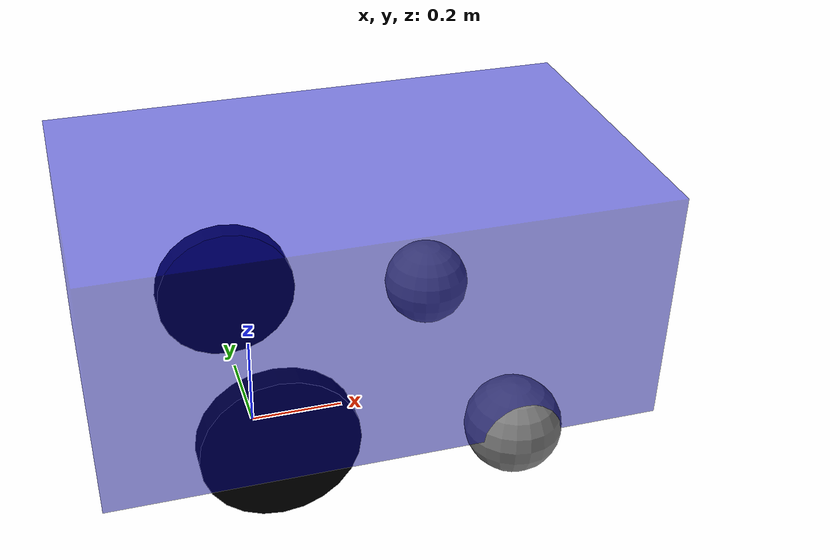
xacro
<?xml version="1.0" encoding="UTF-8"?>
<robot name="wheelchair2" xmlns:xacro="http://www.ros.org/wiki/xacro">

    <xacro:include filename="$(find wheelchair2_description)/urdf/kangaroo_ros2_control.urdf.xacro" />

    <link name="base_footprint" />

    <joint name="base_footprint_joint" type="fixed">
        <parent link="base_footprint" />
        <child link="base_link" />
        <origin xyz="0 0 0.16" rpy="0 0 0" />
    </joint>

    <link name="base_link">
        <visual>
            <origin xyz="0.215 0 0.2" rpy="0 0 0"/>
            <geometry>
                <box size="1.13 0.66 0.5"/>
            </geometry>
            <material name="blue">
                <color rgba="0 0 0.8 0.5"/>
            </material>
        </visual>
    </link>

    <link name="left_wheel">
        <visual>
            <geometry><cylinder radius="0.16" length="0.05"/></geometry>
            <material name="black"><color rgba="0 0 0 1"/></material>
        </visual>
    </link>
    <joint name="base_link_to_left_wheel" type="continuous">
        <parent link="base_link"/>
        <child link="left_wheel"/>
        <origin xyz="0 0.2775 0" rpy="-1.570796 0 0"/>
        <axis xyz="0 0 1"/>
    </joint>

    <link name="right_wheel">
        <visual>
            <geometry><cylinder radius="0.16" length="0.05"/></geometry>
            <material name="black"><color rgba="0 0 0 1"/></material>
        </visual>
    </link>
    <joint name="base_link_to_right_wheel" type="continuous">
        <parent link="base_link"/>
        <child link="right_wheel"/>
        <origin xyz="0 -0.2775 0" rpy="-1.570796 0 0"/>
        <axis xyz="0 0 1"/>
    </joint>

    <link name="caster_left">
        <visual>
            <geometry><sphere radius="0.1"/></geometry>
            <material name="grey"><color rgba="0.5 0.5 0.5 1"/></material>
        </visual>
    </link>
    <joint name="caster_left_joint" type="fixed">
        <parent link="base_link"/>
        <child link="caster_left"/>
        <origin xyz="0.49 0.2775 -0.06" rpy="0 0 0"/>
    </joint>

    <link name="caster_right">
        <visual>
            <geometry><sphere radius="0.1"/></geometry>
            <material name="grey"><color rgba="0.5 0.5 0.5 1"/></material>
        </visual>
    </link>
    <joint name="caster_right_joint" type="fixed">
        <parent link="base_link"/>
        <child link="caster_right"/>
        <origin xyz="0.49 -0.2775 -0.06" rpy="0 0 0"/>
    </joint>

    <link name="laser"/>
    <joint name="base_to_laser" type="fixed">
        <parent link="base_link" />
        <child link="laser" />
        <origin xyz="0.21 0.0057 -0.068" rpy="0 3.14 0" />
    </joint>

    <link name="livox_frame"/>
    <joint name="base_to_livox" type="fixed">
        <parent link="base_link" />
        <child link="livox_frame" />
        <origin xyz="0 0 1.44" rpy="3.14159 0 0" />
    </joint>

    <link name="imu_link"/>
    <joint name="base_to_imu" type="fixed">
        <parent link="base_link" />
        <child link="imu_link" />
        <origin xyz="0.37 0 0" rpy="0 0 0" />
    </joint>

    <xacro:kangaroo_x2_driver name="kangaroo_ros2_control" prefix="" use_sim_time="false"/>

</robot>
